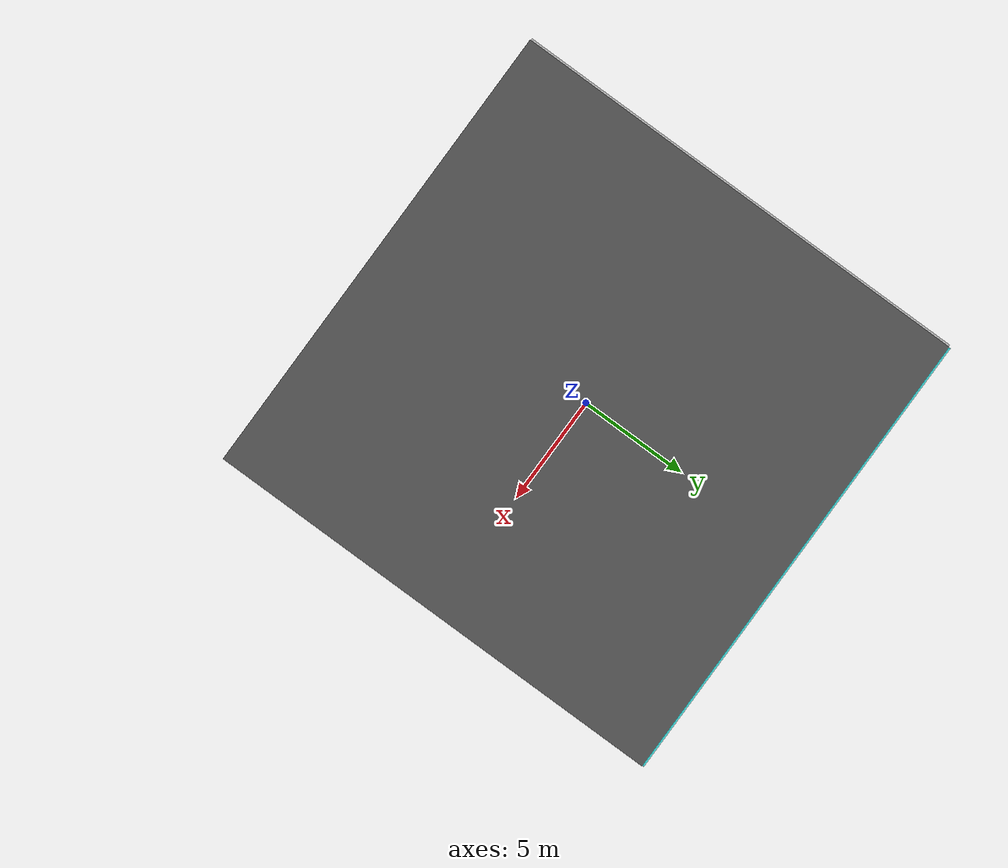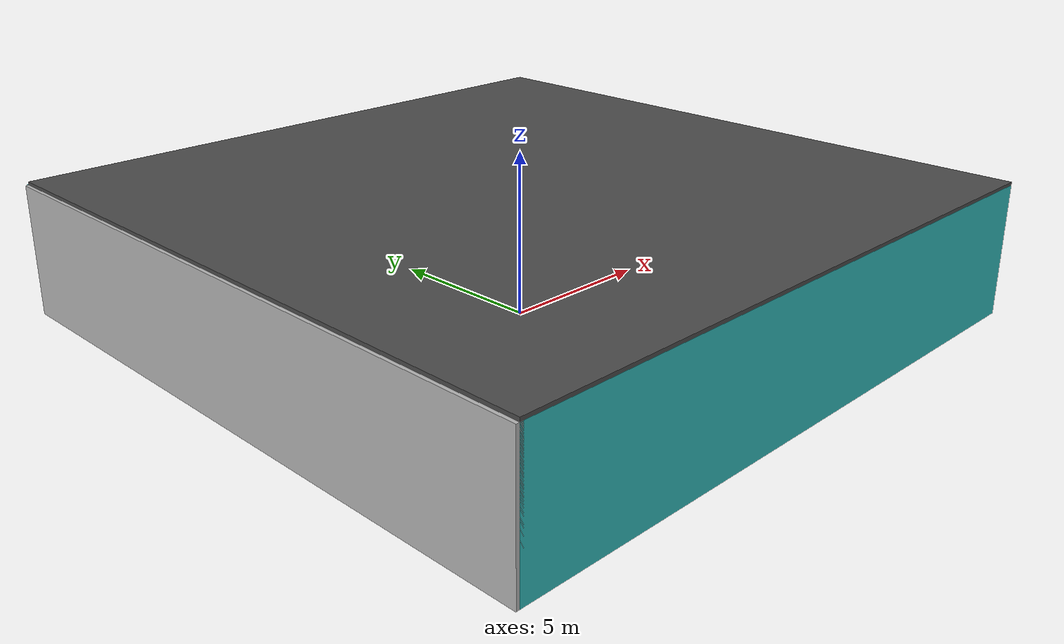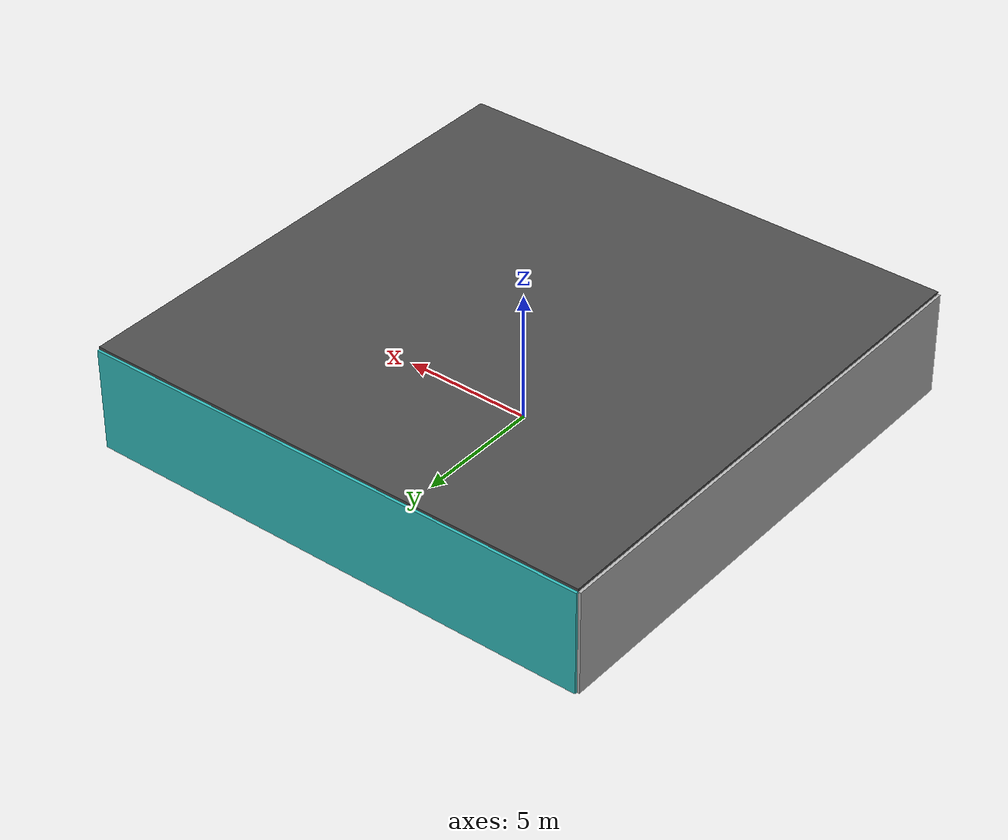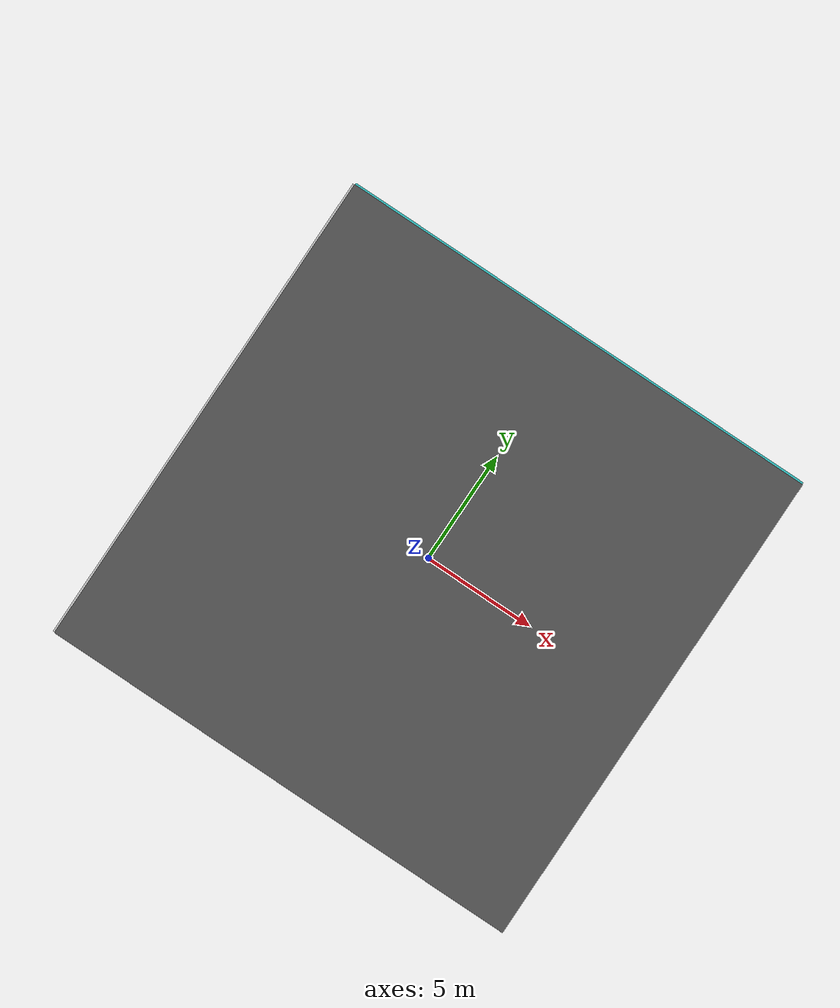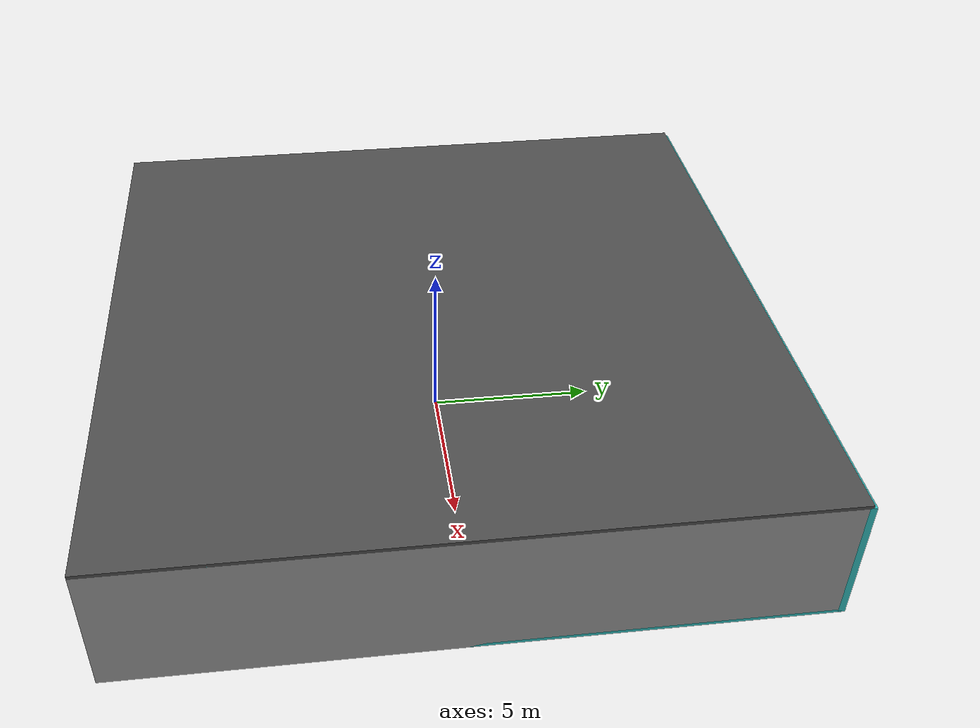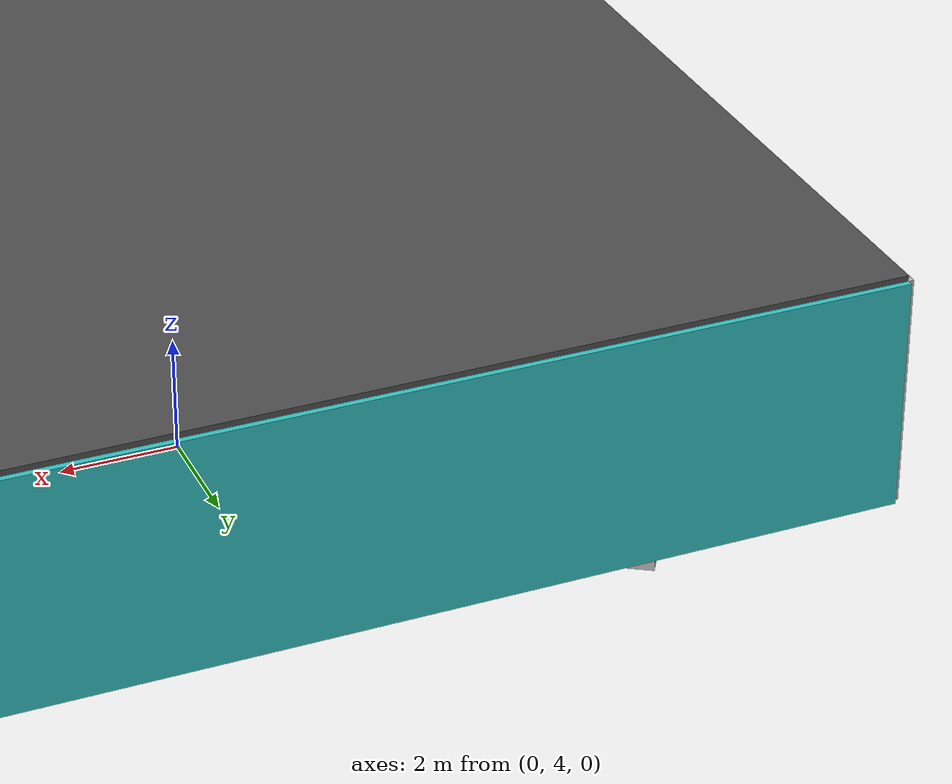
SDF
<sdf version="1.4">
 <world name="default">
  <physics type="ode">
   <max_step_size>0.001</max_step_size>
   <real_time_factor>1</real_time_factor>
   <real_time_update_rate>1000</real_time_update_rate>
   <gravity>0 0 -9.8</gravity>
  </physics>
  <scene><ambient>0.4 0.4 0.4 1</ambient><background>0.7 0.7 0.7 1</background><shadows>1</shadows></scene>
  <model name="Surrounding">
   <static>1</static>
   <link name="Ceiling">
    <collision name="Ceiling_Collision"><geometry><box><size>20 20 0.1</size></box></geometry></collision>
    <visual name="Ceiling_Visual">
     <geometry><box><size>20 20 0.1</size></box></geometry>
     <material>
      <script><uri>file://media/materials/scripts/gazebo.material</uri><name>Gazebo/DarkGrey</name></script>
     </material>
    </visual>
    <pose>0 0 4.05 0 0 0</pose>
   </link>
   <link name="Wall_South">
    <collision name="Wall_South_Collision">
     <geometry><box><size>20 0 4</size></box></geometry>
     <pose>0 0 2 0 -0 0</pose>
    </collision>
    <visual name="Wall_South_Visual">
     <pose>0 0 2 0 -0 0</pose>
     <geometry><box><size>20 0 4</size></box></geometry>
     <material>
      <script><uri>file://media/materials/scripts/gazebo.material</uri><name>Gazebo/Turquoise</name></script>
     </material>
    </visual>
    <velocity_decay><linear>0</linear><angular>0</angular></velocity_decay>
    <pose>0 -10 0 0 -0 0</pose>
   </link>
   <link name="Wall_East">
    <collision name="Wall_21_Collision">
     <geometry><box><size>20 0 4</size></box></geometry>
     <pose>0 0 2 0 -0 0</pose>
    </collision>
    <visual name="Wall_21_Visual">
     <pose>0 0 2 0 -0 0</pose>
     <geometry><box><size>20 0 4</size></box></geometry>
     <material>
      <script><uri>file://media/materials/scripts/gazebo.material</uri><name>Gazebo/GreyGradientSky</name></script>
     </material>
    </visual>
    <velocity_decay><linear>0</linear><angular>0</angular></velocity_decay>
    <pose>10 0 0 0 -0 1.5708</pose>
   </link>
   <link name="Wall_North">
    <collision name="Wall_22_Collision">
     <geometry><box><size>20 0.2 4</size></box></geometry>
     <pose>0 0 2 0 -0 0</pose>
    </collision>
    <visual name="Wall_22_Visual">
     <pose>0 0 2 0 -0 0</pose>
     <geometry><box><size>20 0.2 4</size></box></geometry>
     <material>
      <script><uri>file://media/materials/scripts/gazebo.material</uri><name>Gazebo/TurquoiseGlow</name></script>
     </material>
    </visual>
    <velocity_decay><linear>0</linear><angular>0</angular></velocity_decay>
    <pose>0 10 0 0 -0 0</pose>
   </link>
   <link name="Wall_West">
    <collision name="Wall_23_Collision">
     <geometry><box><size>20 0.2 4</size></box></geometry>
     <pose>0 0 2 0 -0 0</pose>
    </collision>
    <visual name="Wall_23_Visual">
     <pose>0 0 2 0 -0 0</pose>
     <geometry><box><size>20 0.2 4</size></box></geometry>
     <material>
      <script><uri>file://media/materials/scripts/gazebo.material</uri><name>Gazebo/PioneerBody</name></script>
     </material>
    </visual>
    <velocity_decay><linear>0</linear><angular>0</angular></velocity_decay>
    <pose>-10 0 0 0 0 -1.5708</pose>
   </link>
   <link name="Ground_link">
    <collision name="collision">
     <pose>0 0 .05 0 -0 0</pose>
     <geometry><box><size>20 20 0.1</size></box></geometry>
    </collision>
    <visual name="visual">
     <pose>0 0 .05 0 -0 0</pose>
     <geometry><box><size>20 20 0.1</size></box></geometry>
     <material>
      <script>
       <uri>file://media/materials/scripts/gazebo.material</uri>
       <name>Gazebo/TurquoiseGlowOutline</name>
      </script>
     </material>
    </visual>
   </link>
   <static>1</static>
  </model>
  <spherical_coordinates>
   <surface_model>EARTH_WGS84</surface_model>
   <latitude_deg>0</latitude_deg>
   <longitude_deg>0</longitude_deg>
   <elevation>0</elevation>
   <heading_deg>0</heading_deg>
  </spherical_coordinates>
  <light name="lightball_0" type="diffuse">
   <diffuse>0.8 0.8 0.8 1</diffuse>
   <specular>0.2 0.2 0.2 1</specular>
   <attenuation>
    <range>100</range>
    <constant>0.7</constant>
    <linear>0.01</linear>
    <quadratic>0.001</quadratic>
   </attenuation>
   <direction>-0.5 0.1 -0.9</direction>
   <pose>-9.26177128914 -0.83646069216 1.19911581517 0 0 0</pose>
  </light>
  <light name="lightball_1" type="diffuse">
   <diffuse>0.8 0.8 0.8 1</diffuse>
   <specular>0.2 0.2 0.2 1</specular>
   <attenuation>
    <range>100</range>
    <constant>0.7</constant>
    <linear>0.01</linear>
    <quadratic>0.001</quadratic>
   </attenuation>
   <direction>-0.5 0.1 -0.9</direction>
   <pose>5.19475480359 -2.37839469227 2.01873327188 0 0 0</pose>
  </light>
  <light name="lightball_2" type="diffuse">
   <diffuse>0.8 0.8 0.8 1</diffuse>
   <specular>0.2 0.2 0.2 1</specular>
   <attenuation>
    <range>100</range>
    <constant>0.7</constant>
    <linear>0.01</linear>
    <quadratic>0.001</quadratic>
   </attenuation>
   <direction>-0.5 0.1 -0.9</direction>
   <pose>-5.7975985494 2.42181710559 3.35940869545 0 0 0</pose>
  </light>
  <light name="lightball_3" type="diffuse">
   <diffuse>0.8 0.8 0.8 1</diffuse>
   <specular>0.2 0.2 0.2 1</specular>
   <attenuation>
    <range>100</range>
    <constant>0.7</constant>
    <linear>0.01</linear>
    <quadratic>0.001</quadratic>
   </attenuation>
   <direction>-0.5 0.1 -0.9</direction>
   <pose>-9.83103916425 -7.99503567966 1.8655752126 0 0 0</pose>
  </light>
  <light name="lightball_4" type="diffuse">
   <diffuse>0.8 0.8 0.8 1</diffuse>
   <specular>0.2 0.2 0.2 1</specular>
   <attenuation>
    <range>100</range>
    <constant>0.7</constant>
    <linear>0.01</linear>
    <quadratic>0.001</quadratic>
   </attenuation>
   <direction>-0.5 0.1 -0.9</direction>
   <pose>5.96882552937 -2.65601970844 3.46000368519 0 0 0</pose>
  </light>
  <light name="lightball_5" type="diffuse">
   <diffuse>0.8 0.8 0.8 1</diffuse>
   <specular>0.2 0.2 0.2 1</specular>
   <attenuation>
    <range>100</range>
    <constant>0.7</constant>
    <linear>0.01</linear>
    <quadratic>0.001</quadratic>
   </attenuation>
   <direction>-0.5 0.1 -0.9</direction>
   <pose>-3.8253762449 3.70229745212 1.50957796857 0 0 0</pose>
  </light>
  <light name="lightball_6" type="diffuse">
   <diffuse>0.8 0.8 0.8 1</diffuse>
   <specular>0.2 0.2 0.2 1</specular>
   <attenuation>
    <range>100</range>
    <constant>0.7</constant>
    <linear>0.01</linear>
    <quadratic>0.001</quadratic>
   </attenuation>
   <direction>-0.5 0.1 -0.9</direction>
   <pose>1.74574874823 -4.6901004629 1.49715989556 0 0 0</pose>
  </light>
  <light name="lightball_7" type="diffuse">
   <diffuse>0.8 0.8 0.8 1</diffuse>
   <specular>0.2 0.2 0.2 1</specular>
   <attenuation>
    <range>100</range>
    <constant>0.7</constant>
    <linear>0.01</linear>
    <quadratic>0.001</quadratic>
   </attenuation>
   <direction>-0.5 0.1 -0.9</direction>
   <pose>-9.98468145182 -6.74336806109 3.84991319396 0 0 0</pose>
  </light>
  <light name="lightball_8" type="diffuse">
   <diffuse>0.8 0.8 0.8 1</diffuse>
   <specular>0.2 0.2 0.2 1</specular>
   <attenuation>
    <range>100</range>
    <constant>0.7</constant>
    <linear>0.01</linear>
    <quadratic>0.001</quadratic>
   </attenuation>
   <direction>-0.5 0.1 -0.9</direction>
   <pose>2.66347394488 2.40224870836 2.42240174024 0 0 0</pose>
  </light>
  <light name="lightball_9" type="diffuse">
   <diffuse>0.8 0.8 0.8 1</diffuse>
   <specular>0.2 0.2 0.2 1</specular>
   <attenuation>
    <range>100</range>
    <constant>0.7</constant>
    <linear>0.01</linear>
    <quadratic>0.001</quadratic>
   </attenuation>
   <direction>-0.5 0.1 -0.9</direction>
   <pose>2.00431339328 -5.84470853857 1.49214774894 0 0 0</pose>
  </light>
  <light name="lightball_10" type="diffuse">
   <diffuse>0.8 0.8 0.8 1</diffuse>
   <specular>0.2 0.2 0.2 1</specular>
   <attenuation>
    <range>100</range>
    <constant>0.7</constant>
    <linear>0.01</linear>
    <quadratic>0.001</quadratic>
   </attenuation>
   <direction>-0.5 0.1 -0.9</direction>
   <pose>-0.172893902577 8.86623983592 2.24455620099 0 0 0</pose>
  </light>
  <light name="lightball_11" type="diffuse">
   <diffuse>0.8 0.8 0.8 1</diffuse>
   <specular>0.2 0.2 0.2 1</specular>
   <attenuation>
    <range>100</range>
    <constant>0.7</constant>
    <linear>0.01</linear>
    <quadratic>0.001</quadratic>
   </attenuation>
   <direction>-0.5 0.1 -0.9</direction>
   <pose>5.9682953299 6.69967386225 2.77423951235 0 0 0</pose>
  </light>
  <include>
   <uri>model://textured_shapes</uri>
   <pose>-6.59485348151 7.70976758517 0 0 0 2.58194195483</pose>
  </include>
  <include><uri>model://table</uri><pose>-5.30226608229 -7.14304234807 0 0 0 1.94099183093</pose></include>
  <include>
   <uri>model://construction_cone</uri>
   <pose>-2.53224567509 0.781054294403 0 0 0 1.55548673301</pose>
  </include>
  <include><uri>model://cabinet</uri><pose>0.46633836126 -1.18019810005 0 0 0 2.11998540588</pose></include>
  <include>
   <uri>model://construction_cone</uri>
   <pose>5.69980088644 0.359598933447 0 0 0 1.04229763228</pose>
  </include>
  <include><uri>model://cabinet</uri><pose>8.28199614573 4.24395688541 0 0 0 0.663608797041</pose></include>
 </world>
</sdf>

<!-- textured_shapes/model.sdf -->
<sdf version="1.6">
  <model name="textured_shapes">
    <pose>0 0 0.5 0 0 0</pose>
    <link name="box">
      <pose>0 -1.5 0 0 0 0</pose>
      <collision name="collision">
        <geometry>
          <box>
            <size>1 1 1</size>
          </box>
        </geometry>
      </collision>
      <visual name="visual">
        <geometry>
          <box>
            <size>1 1 1</size>
          </box>
        </geometry>
        <material>
          <script>
            <uri>model://../model_source/models/textured_shapes/materials/scripts</uri>
            <uri>model://../model_source/models/textured_shapes/materials/textures</uri>
            <name>TexturedShape/Squares</name>
          </script>
        </material>
      </visual>
    </link>
    <link name="sphere">
      <collision name="collision">
        <geometry>
          <sphere>
            <radius>0.5</radius>
          </sphere>
        </geometry>
      </collision>
      <visual name="visual">
        <geometry>
          <sphere>
            <radius>0.5</radius>
          </sphere>
        </geometry>
        <material>
          <script>
            <uri>model://../model_source/models/textured_shapes/materials/scripts</uri>
            <uri>model://../model_source/models/textured_shapes/materials/textures</uri>
            <name>TexturedShape/Squares</name>
          </script>
        </material>
      </visual>
    </link>
    <link name="cylinder">
      <pose>0 1.5 0 0 0 0</pose>
      <collision name="collision">
        <geometry>
          <cylinder>
            <radius>0.5</radius>
            <length>1</length>
          </cylinder>
        </geometry>
      </collision>
      <visual name="visual">
        <geometry>
          <cylinder>
            <radius>0.5</radius>
            <length>1</length>
          </cylinder>
        </geometry>
        <material>
          <script>
            <uri>model://../model_source/models/textured_shapes/materials/scripts</uri>
            <uri>model://../model_source/models/textured_shapes/materials/textures</uri>
            <name>TexturedShape/Squares</name>
          </script>
        </material>
      </visual>
    </link>
  </model>
</sdf>

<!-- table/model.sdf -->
<sdf version="1.5">
  <model name="table">
    <static>true</static>
    <link name="link">
      <collision name="surface">
        <pose>0 0 1.0 0 0 0</pose>
        <geometry>
          <box>
            <size>1.5 0.8 0.03</size>
          </box>
        </geometry>
        <surface>
          <friction>
            <ode>
              <mu>0.6</mu>
              <mu2>0.6</mu2>
            </ode>
          </friction>
        </surface>
      </collision>
      <visual name="visual1">
        <pose>0 0 1.0 0 0 0</pose>
        <geometry>
          <box>
            <size>1.5 0.8 0.03</size>
          </box>
        </geometry>
        <material>
          <script>
            <uri>model://media/materials/scripts/gazebo.material</uri>
            <name>Gazebo/Wood</name>
          </script>
        </material>
      </visual>
      <collision name="front_left_leg">
        <pose>0.68 0.38 0.5 0 0 0</pose>
        <geometry>
          <cylinder>
            <radius>0.02</radius>
            <length>1.0</length>
          </cylinder>
        </geometry>
      </collision>
      <visual name="front_left_leg">
        <pose>0.68 0.38 0.5 0 0 0</pose>
        <geometry>
          <cylinder>
            <radius>0.02</radius>
            <length>1.0</length>
          </cylinder>
        </geometry>
        <material>
          <script>
            <uri>model://media/materials/scripts/gazebo.material</uri>
            <name>Gazebo/Grey</name>
          </script>
        </material>
      </visual>
      <collision name="front_right_leg">
        <pose>0.68 -0.38 0.5 0 0 0</pose>
        <geometry>
          <cylinder>
            <radius>0.02</radius>
            <length>1.0</length>
          </cylinder>
        </geometry>
      </collision>
      <visual name="front_right_leg">
        <pose>0.68 -0.38 0.5 0 0 0</pose>
        <geometry>
          <cylinder>
            <radius>0.02</radius>
            <length>1.0</length>
          </cylinder>
        </geometry>
        <material>
          <script>
            <uri>model://media/materials/scripts/gazebo.material</uri>
            <name>Gazebo/Grey</name>
          </script>
        </material>
      </visual>
      <collision name="back_right_leg">
        <pose>-0.68 -0.38 0.5 0 0 0</pose>
        <geometry>
          <cylinder>
            <radius>0.02</radius>
            <length>1.0</length>
          </cylinder>
        </geometry>
      </collision>
      <visual name="back_right_leg">
        <pose>-0.68 -0.38 0.5 0 0 0</pose>
        <geometry>
          <cylinder>
            <radius>0.02</radius>
            <length>1.0</length>
          </cylinder>
        </geometry>
        <material>
          <script>
            <uri>model://media/materials/scripts/gazebo.material</uri>
            <name>Gazebo/Grey</name>
          </script>
        </material>
      </visual>
      <collision name="back_left_leg">
        <pose>-0.68 0.38 0.5 0 0 0</pose>
        <geometry>
          <cylinder>
            <radius>0.02</radius>
            <length>1.0</length>
          </cylinder>
        </geometry>
      </collision>
      <visual name="back_left_leg">
        <pose>-0.68 0.38 0.5 0 0 0</pose>
        <geometry>
          <cylinder>
            <radius>0.02</radius>
            <length>1.0</length>
          </cylinder>
        </geometry>
        <material>
          <script>
            <uri>model://media/materials/scripts/gazebo.material</uri>
            <name>Gazebo/Grey</name>
          </script>
        </material>
      </visual>
    </link>
  </model>
</sdf>

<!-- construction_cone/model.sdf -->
<sdf version="1.5">
  <model name="Construction Cone">
    <link name="link">
      <collision name="collision">
        <geometry>
          <mesh>
            <scale>10 10 10</scale>
            <uri>file://isr-testbed/construction_cone/meshes/construction_cone.dae</uri>
          </mesh>
        </geometry>
      </collision>
      <visual name="visual">
        <geometry>
          <mesh>
            <scale>10 10 10</scale>
            <uri>file://isr-testbed/construction_cone/meshes/construction_cone.dae</uri>
          </mesh>
        </geometry>
      </visual>
    </link>
  </model>
</sdf>

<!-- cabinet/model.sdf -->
<sdf version="1.5">
  <model name="cabinet">
    <static>true</static>
    <link name="cabinet_bottom_plate">
      <inertial>
        <pose>0 0 -1 0 0 0</pose>
        <inertia>
          <ixx>2.050000</ixx>
          <ixy>0</ixy>
          <ixz>0</ixz>
          <iyy>2.050000</iyy>
          <iyz>0</iyz>
          <izz>2.050000</izz>
        </inertia>
        <mass>25.000000</mass>
      </inertial>
      <collision name="cabinet_bottom_plate_geom">
        <pose>0 0 0.010000 0 0 0</pose>
        <geometry>
          <box>
            <size>0.450000 0.450000 0.020000</size>
          </box>
        </geometry>
      </collision>
      <visual name="cabinet_bottom_plate_geom_visual">
        <pose>0 0 0.010000 0 0 0</pose>
        <geometry>
          <box>
            <size>0.450000 0.450000 0.020000</size>
          </box>
        </geometry>
        <material>
          <script>
            <uri>model://media/materials/scripts/gazebo.material</uri>
            <name>Gazebo/Wood</name>
          </script>
        </material>
      </visual>
      <collision name="cabinet_bottom_plate_geom_cabinet_back_plate">
        <pose>0.235000 0 0.510000 0 0 0</pose>
        <geometry>
          <box>
            <size>0.020000 0.450000 1.020000</size>
          </box>
        </geometry>
      </collision>
      <visual name="cabinet_bottom_plate_geom_cabinet_back_plate_visual">
        <pose>0.235000 0 0.510000 0 0 0</pose>
        <geometry>
          <box>
            <size>0.020000 0.450000 1.020000</size>
          </box>
        </geometry>
        <material>
          <script>
            <uri>model://media/materials/scripts/gazebo.material</uri>
            <name>Gazebo/Wood</name>
          </script>
        </material>
      </visual>
      <collision name="cabinet_bottom_plate_geom_cabinet_left_plate">
        <pose>0 0.235000 0.510000 0 0 0</pose>
        <geometry>
          <box>
            <size>0.450000 0.020000 1.020000</size>
          </box>
        </geometry>
      </collision>
      <visual name="cabinet_bottom_plate_geom_cabinet_left_plate_visual">
        <pose>0 0.235000 0.510000 0 0 0</pose>
        <geometry>
          <box>
            <size>0.450000 0.020000 1.020000</size>
          </box>
        </geometry>
        <material>
          <script>
            <uri>model://media/materials/scripts/gazebo.material</uri>
            <name>Gazebo/Wood</name>
          </script>
        </material>
      </visual>
      <collision name="cabinet_bottom_plate_geom_cabinet_middle_plate">
        <pose>0 0 0.510000 0 0 0</pose>
        <geometry>
          <box>
            <size>0.450000 0.450000 0.020000</size>
          </box>
        </geometry>
      </collision>
      <visual name="cabinet_bottom_plate_geom_cabinet_middle_plate_visual">
        <pose>0 0 0.510000 0 0 0</pose>
        <geometry>
          <box>
            <size>0.450000 0.450000 0.020000</size>
          </box>
        </geometry>
        <material>
          <script>
            <uri>model://media/materials/scripts/gazebo.material</uri>
            <name>Gazebo/Wood</name>
          </script>
        </material>
      </visual>
      <collision name="cabinet_bottom_plate_geom_cabinet_right_plate">
        <pose>0 -0.235000 0.510000 0 0 0</pose>
        <geometry>
          <box>
            <size>0.450000 0.020000 1.020000</size>
          </box>
        </geometry>
      </collision>
      <visual name="cabinet_bottom_plate_geom_cabinet_right_plate_visual">
        <pose>0 -0.235000 0.510000 0 0 0</pose>
        <geometry>
          <box>
            <size>0.450000 0.020000 1.020000</size>
          </box>
        </geometry>
        <material>
          <script>
            <uri>model://media/materials/scripts/gazebo.material</uri>
            <name>Gazebo/Wood</name>
          </script>
        </material>
      </visual>
      <collision name="cabinet_bottom_plate_geom_cabinet_top_plate">
        <pose>0 0 1.010000 0 0 0</pose>
        <geometry>
          <box>
            <size>0.450000 0.450000 0.020000</size>
          </box>
        </geometry>
      </collision>
      <visual name="cabinet_bottom_plate_geom_cabinet_top_plate_visual">
        <pose>0 0 1.010000 0 0 0</pose>
        <geometry>
          <box>
            <size>0.450000 0.450000 0.020000</size>
          </box>
        </geometry>
        <material>
          <script>
            <uri>model://media/materials/scripts/gazebo.material</uri>
            <name>Gazebo/Wood</name>
          </script>
        </material>
      </visual>
    </link>
  </model>
</sdf>
